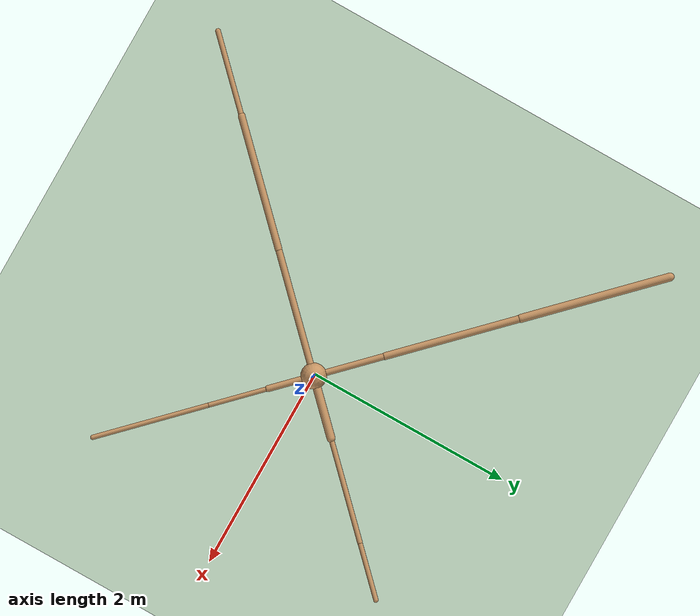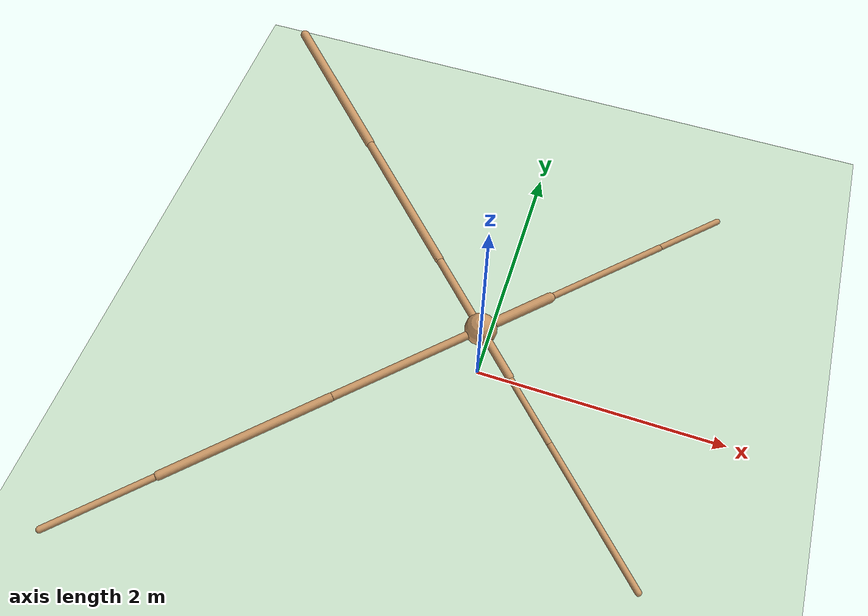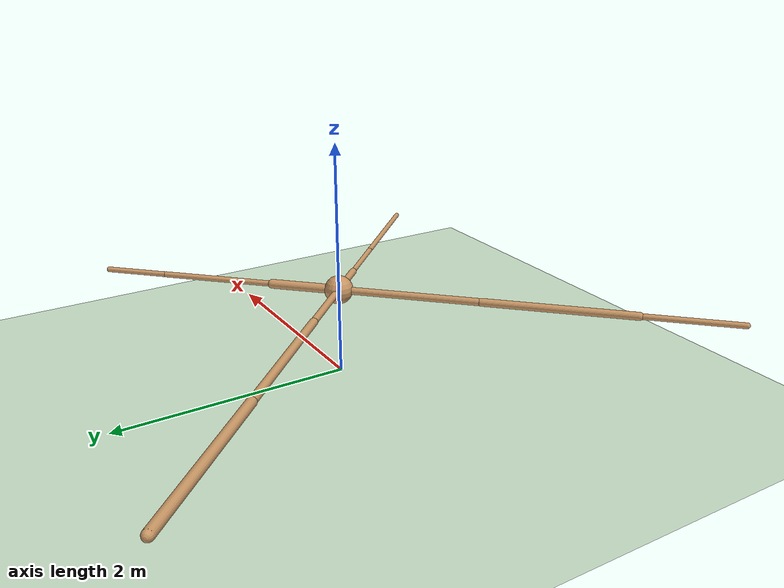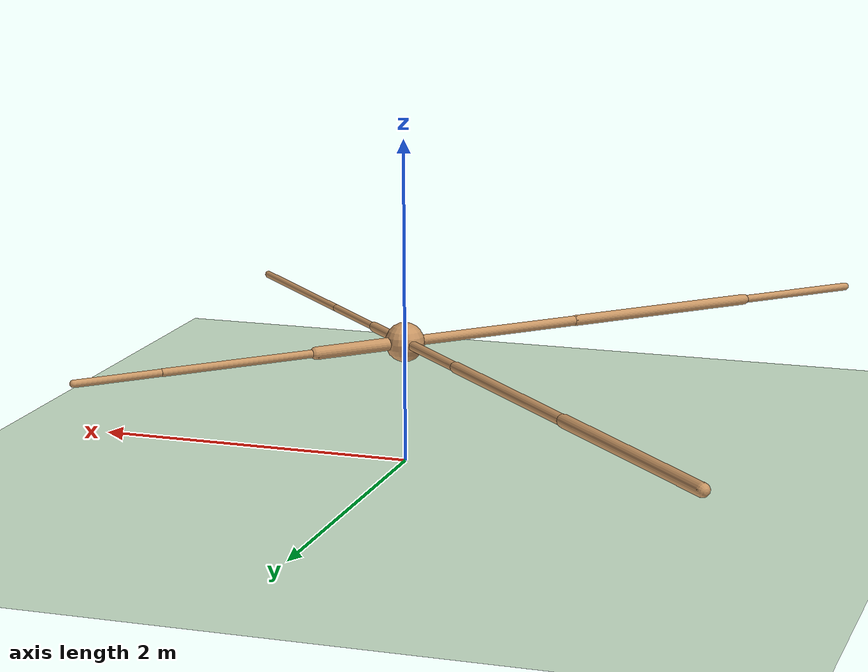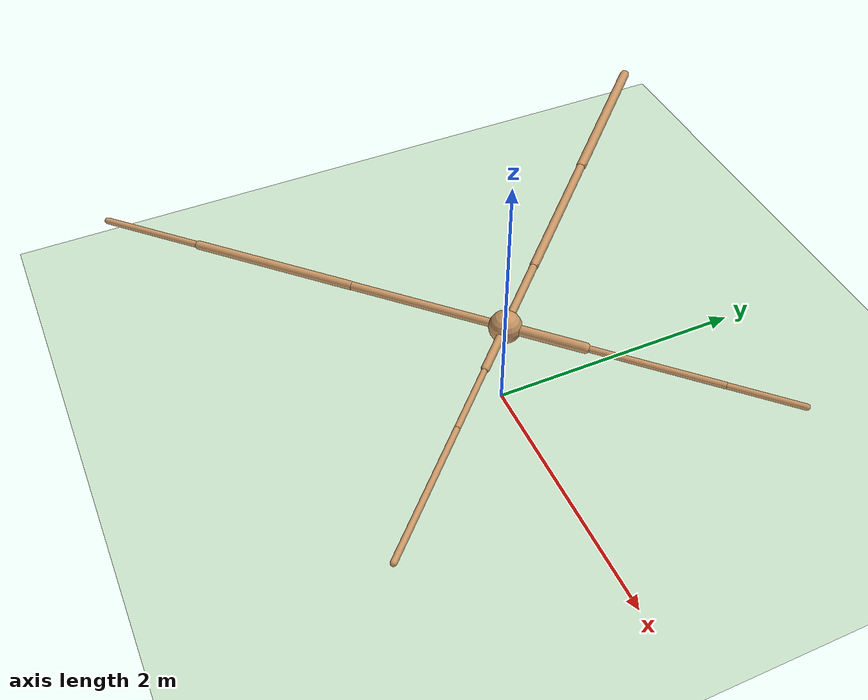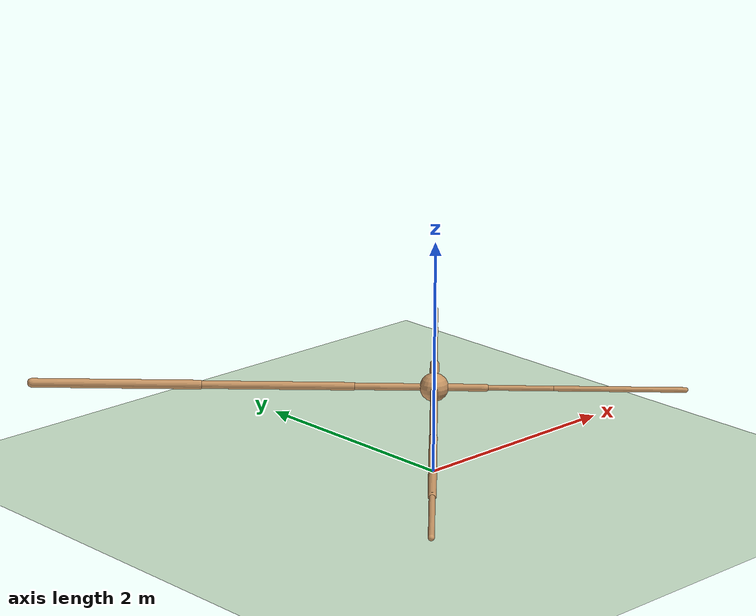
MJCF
<mujoco model="ant">
  <compiler angle="degree" coordinate="local" inertiafromgeom="true" />
  <option integrator="RK4" timestep="0.01" />
  <custom>
    <numeric data="0.0 0.0 0.55 1.0 0.0 0.0 0.0 0.0 1.0 0.0 -1.0 0.0 -1.0 0.0 1.0" name="init_qpos" />
  </custom>
  <default>
    <joint armature="1" damping="1" limited="true" />
    <geom conaffinity="0" condim="3" density="5.0" friction="1 0.5 0.5" margin="0.01" rgba="0.8 0.6 0.4 1" />
  </default>
  <asset>
    <texture builtin="gradient" height="100" rgb1="1 1 1" rgb2="0 0 0" type="skybox" width="100" />
    <texture builtin="flat" height="1278" mark="cross" markrgb="1 1 1" name="texgeom" random="0.01" rgb1="0.8 0.6 0.4" rgb2="0.8 0.6 0.4" type="cube" width="127" />
    <texture builtin="checker" height="100" name="texplane" rgb1="0 0 0" rgb2="0.8 0.8 0.8" type="2d" width="100" />
    <material name="MatPlane" reflectance="0.5" shininess="1" specular="1" texrepeat="60 60" texture="texplane" />
    <material name="geom" texture="texgeom" texuniform="true" />
  </asset>
  <worldbody>
    <light cutoff="100" diffuse="1 1 1" dir="-0 0 -1.3" directional="true" exponent="1" pos="0 0 1.3" specular=".1 .1 .1" />
    <geom conaffinity="1" condim="3" material="MatPlane" name="floor" pos="0 0 0" rgba="0.8 0.9 0.8 1" size="40 40 40" type="plane" />
    <body name="torso" pos="0 0 0.75">
      <camera name="track" mode="trackcom" pos="0 -11 5" xyaxes="1 0 0 0 0.5 1" />
      <geom name="torso_geom" pos="0 0 0" size="0.12103414535522461" type="sphere" />
      <joint armature="0" damping="0" limited="false" margin="0.01" name="root" pos="0 0 0" type="free" />
      <body name="front_left_leg" pos="0 0 0">
        <geom fromto="0 0 0 0.41565412282943726 0.41565412282943726 0" name="aux_1_geom" size="0.03929619491100311" type="capsule" />
        <body name="aux_1" pos="0.41565412282943726 0.41565412282943726 0">
          <joint axis="0 0 1" name="hip_1" pos="0.0 0.0 0.0" range="-30 30" type="hinge" />
          <geom fromto="0 0 0 0.694828987121582 0.694828987121582 0" name="left_leg_geom" size="0.024402830749750137" type="capsule" />
          <body name="left_leg_geom_aux" pos="0.694828987121582 0.694828987121582 0">
            <joint axis="-1 1 0" name="ankle_1" pos="0.0 0.0 0.0" range="30 70" type="hinge" />
            <geom fromto="0 0 0 0.3836771845817566 0.3836771845817566 0" name="left_ankle_geom" size="0.022879598662257195" type="capsule" />
          </body>
        </body>
      </body>
      <body name="front_right_leg" pos="0 0 0">
        <geom fromto="0 0 0 -0.47775813937187195 0.47775813937187195 0" name="aux_2_geom" size="0.030011089518666267" type="capsule" />
        <body name="aux_2" pos="-0.47775813937187195 0.47775813937187195 0">
          <joint axis="0 0 1" name="hip_2" pos="0.0 0.0 0.0" range="-30 30" type="hinge" />
          <geom fromto="0 0 0 -0.905146598815918 0.905146598815918 0" name="right_leg_geom" size="0.03409101814031601" type="capsule" />
          <body name="right_leg_geom_aux" pos="-0.905146598815918 0.905146598815918 0">
            <joint axis="1 1 0" name="ankle_2" pos="0.0 0.0 0.0" range="-70 -30" type="hinge" />
            <geom fromto="0 0 0 -0.9942713975906372 0.9942713975906372 0" name="right_ankle_geom" size="0.03922826051712036" type="capsule" />
          </body>
        </body>
      </body>
      <body name="back_leg" pos="0 0 0">
        <geom fromto="0 0 0 -0.8456529974937439 -0.8456529974937439 0" name="aux_3_geom" size="0.03119121864438057" type="capsule" />
        <body name="aux_3" pos="-0.8456529974937439 -0.8456529974937439 0">
          <joint axis="0 0 1" name="hip_3" pos="0.0 0.0 0.0" range="-30 30" type="hinge" />
          <geom fromto="0 0 0 -0.8886162638664246 -0.8886162638664246 0" name="back_leg_geom" size="0.03324420005083084" type="capsule" />
          <body name="back_leg_geom_aux" pos="-0.8886162638664246 -0.8886162638664246 0">
            <joint axis="-1 1 0" name="ankle_3" pos="0.0 0.0 0.0" range="-70 -30" type="hinge" />
            <geom fromto="0 0 0 -0.5659706592559814 -0.5659706592559814 0" name="third_ankle_geom" size="0.024432454258203506" type="capsule" />
          </body>
        </body>
      </body>
      <body name="right_back_leg" pos="0 0 0">
        <geom fromto="0 0 0 0.30386143922805786 -0.30386143922805786 0" name="aux_4_geom" size="0.030775072053074837" type="capsule" />
        <body name="aux_4" pos="0.30386143922805786 -0.30386143922805786 0">
          <joint axis="0 0 1" name="hip_4" pos="0.0 0.0 0.0" range="-30 30" type="hinge" />
          <geom fromto="0 0 0 0.3982886075973511 -0.3982886075973511 0" name="rightback_leg_geom" size="0.022257350385189056" type="capsule" />
          <body name="rightback_leg_geom_aux" pos="0.3982886075973511 -0.3982886075973511 0">
            <joint axis="1 1 0" name="ankle_4" pos="0.0 0.0 0.0" range="30 70" type="hinge" />
            <geom fromto="0 0 0 0.7722089886665344 -0.7722089886665344 0" name="fourth_ankle_geom" size="0.02243398316204548" type="capsule" />
          </body>
        </body>
      </body>
    </body>
  </worldbody>
  <actuator>
    <motor ctrllimited="true" ctrlrange="-1.0 1.0" joint="hip_4" gear="150" />
    <motor ctrllimited="true" ctrlrange="-1.0 1.0" joint="ankle_4" gear="150" />
    <motor ctrllimited="true" ctrlrange="-1.0 1.0" joint="hip_1" gear="150" />
    <motor ctrllimited="true" ctrlrange="-1.0 1.0" joint="ankle_1" gear="150" />
    <motor ctrllimited="true" ctrlrange="-1.0 1.0" joint="hip_2" gear="150" />
    <motor ctrllimited="true" ctrlrange="-1.0 1.0" joint="ankle_2" gear="150" />
    <motor ctrllimited="true" ctrlrange="-1.0 1.0" joint="hip_3" gear="150" />
    <motor ctrllimited="true" ctrlrange="-1.0 1.0" joint="ankle_3" gear="150" />
  </actuator>
</mujoco>
